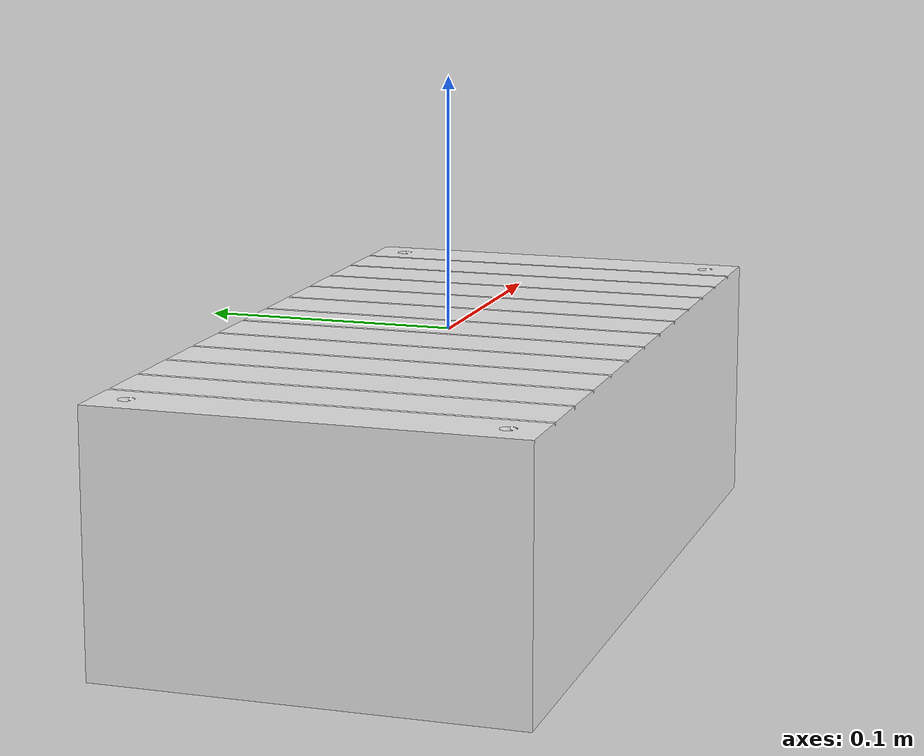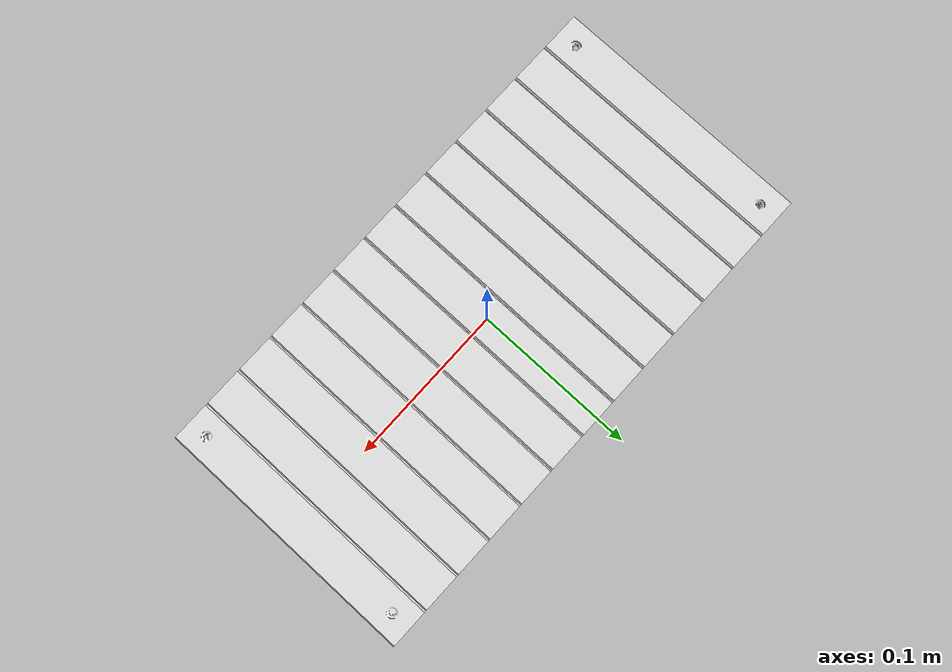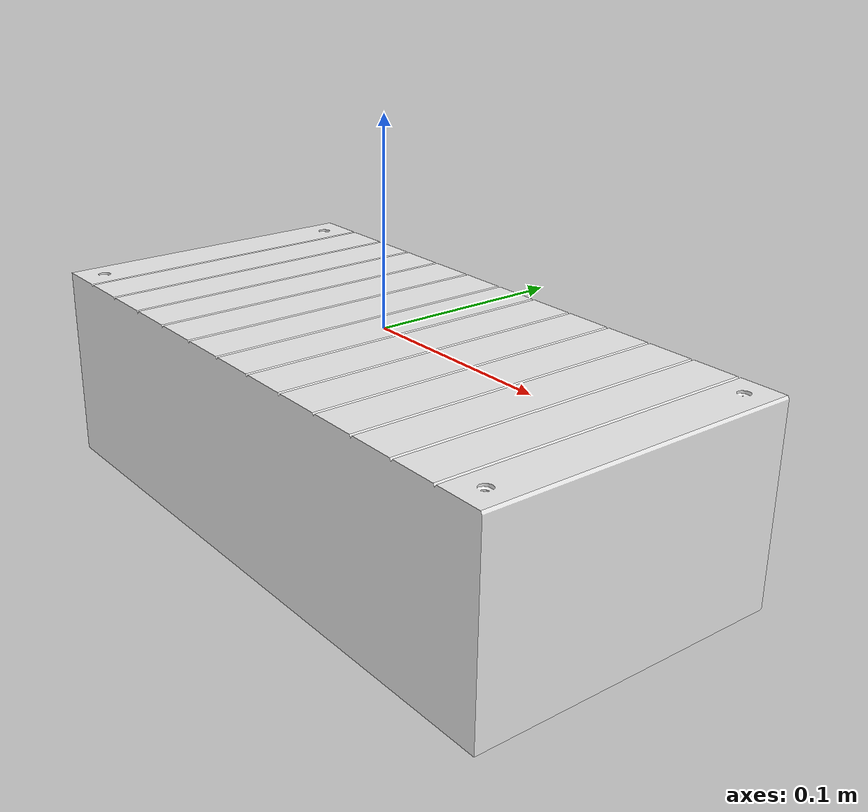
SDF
<?xml version='1.0'?>
<sdf version='1.6'>
  <model name='HW_battery_module_sc_v_2_half'>
    <link name='link_1'>
      <inertial>
        <mass>0.1</mass>
        <inertia>
          <ixx>0.01275</ixx>
          <ixy>0</ixy>
          <ixz>0</ixz>
          <iyy>0.03997</iyy>
          <iyz>0</iyz>
          <izz>0.04538</izz>
        </inertia>
      </inertial>
      <pose>-0 0 0 0 -0 0</pose>
      <visual name='visual'>
         <pose frame=''>0 0 -0.05 0 -0 0</pose>
        <geometry>
          <mesh>
            <uri>/home/wanghu26/battery_ws/src/battery_model/battery_model_stl/HW_Battery Module.stl</uri>
            <scale>0.5 0.5 0.5</scale>
          </mesh>
        </geometry>
        <material>
          <lighting>1</lighting>
          <script>
            <uri>file://media/materials/scripts/gazebo.material</uri>
            <name>Gazebo/White</name>
          </script>
          <shader type='pixel'/>
        </material>
        <transparency>0</transparency>
        <cast_shadows>1</cast_shadows>
      </visual>
      <collision name='collision'>
        <laser_retro>0</laser_retro>
        <max_contacts>10</max_contacts>
        <pose frame=''>0 0 -0.05 0 -0 0</pose>
        <geometry>
          <box>
            <size>0.33 0.165 0.105</size>
          </box>
        </geometry>
        <surface>
          <friction>
            <ode>
              <mu>1</mu>
              <mu2>1</mu2>
              <fdir1>0 0 0</fdir1>
              <slip1>0</slip1>
              <slip2>0</slip2>
            </ode>
            <torsional>
              <coefficient>1</coefficient>
              <patch_radius>0</patch_radius>
              <surface_radius>0</surface_radius>
              <use_patch_radius>1</use_patch_radius>
              <ode>
                <slip>0</slip>
              </ode>
            </torsional>
          </friction>
          <bounce>
            <restitution_coefficient>0</restitution_coefficient>
            <threshold>1e+06</threshold>
          </bounce>
          <contact>
            <collide_without_contact>0</collide_without_contact>
            <collide_without_contact_bitmask>1</collide_without_contact_bitmask>
            <collide_bitmask>1</collide_bitmask>
            <ode>
              <soft_cfm>0</soft_cfm>
              <soft_erp>0.2</soft_erp>
              <kp>1e+13</kp>
              <kd>1</kd>
              <max_vel>0.01</max_vel>
              <min_depth>0.0001</min_depth>
            </ode>
            <bullet>
              <split_impulse>1</split_impulse>
              <split_impulse_penetration_threshold>-0.01</split_impulse_penetration_threshold>
              <soft_cfm>0</soft_cfm>
              <soft_erp>0.2</soft_erp>
              <kp>1e+13</kp>
              <kd>1</kd>
            </bullet>
          </contact>
        </surface>
      </collision>
    </link>
    <static>0</static>
    <allow_auto_disable>1</allow_auto_disable>
  </model>
</sdf>
